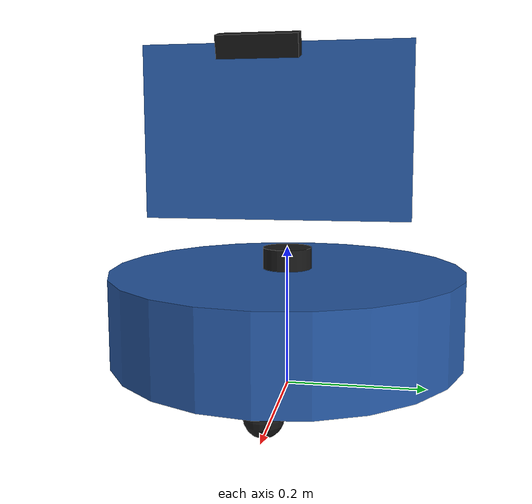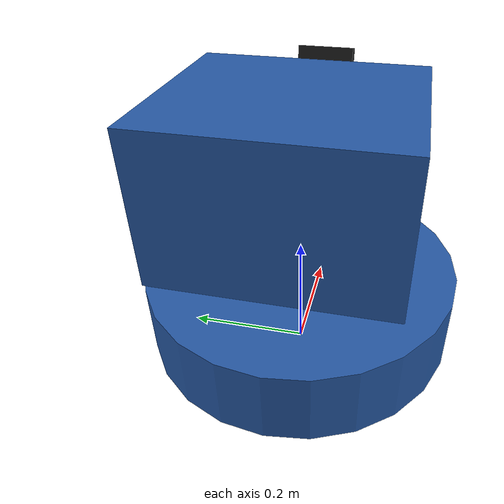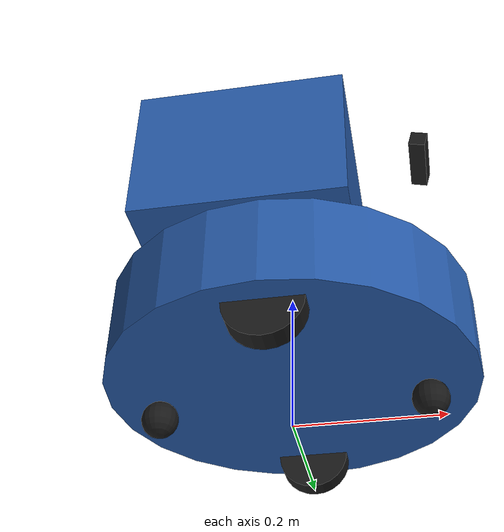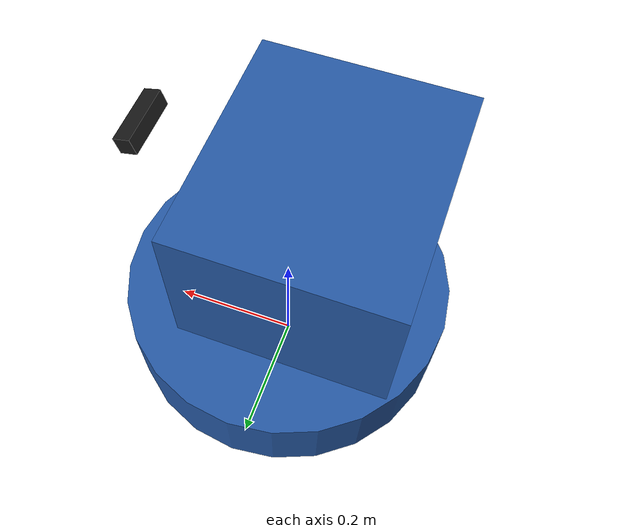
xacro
<?xml version="1.0"?>
<robot xmlns:xacro="http://www.ros.org/wiki/xacro" name="courier">

  <xacro:arg name="use_sim" default="true"/>
  <xacro:arg name="wheel_radius_error" default="0.01"/>
  <xacro:arg name="wheel_separation_error" default="-0.04"/>

  <xacro:property name="base_radius" value="0.25"/>
  <xacro:property name="base_height" value="0.12"/>
  <xacro:property name="base_z" value="0.05"/>
  <xacro:property name="wheel_radius" value="0.05"/>
  <xacro:property name="wheel_width" value="0.03"/>
  <xacro:property name="wheel_separation" value="0.40"/>
  <xacro:property name="lidar_z" value="0.18"/>
  <xacro:property name="camera_x" value="0.20"/>
  <xacro:property name="camera_z" value="0.45"/>
  <xacro:property name="camera_pitch" value="0.2618"/>

  <xacro:macro name="cylinder_inertia" params="m r h">
    <inertia ixx="${m*(3*r*r+h*h)/12}" ixy="0" ixz="0" iyy="${m*(3*r*r+h*h)/12}" iyz="0" izz="${m*r*r/2}"/>
  </xacro:macro>
  <xacro:macro name="box_inertia" params="m x y z">
    <inertia ixx="${m*(y*y+z*z)/12}" ixy="0" ixz="0" iyy="${m*(x*x+z*z)/12}" iyz="0" izz="${m*(x*x+y*y)/12}"/>
  </xacro:macro>

  <material name="body"><color rgba="0.15 0.35 0.65 1"/></material>
  <material name="dark"><color rgba="0.1 0.1 0.1 1"/></material>

  <link name="base_footprint"/>

  <link name="base_link">
    <visual>
      <origin xyz="0 0 ${base_height/2}"/>
      <geometry><cylinder radius="${base_radius}" length="${base_height}"/></geometry>
      <material name="body"/>
    </visual>
    <collision>
      <origin xyz="0 0 ${base_height/2}"/>
      <geometry><cylinder radius="${base_radius}" length="${base_height}"/></geometry>
    </collision>
    <inertial>
      <origin xyz="0 0 ${base_height/2}"/>
      <mass value="15.0"/>
      <xacro:cylinder_inertia m="15.0" r="${base_radius}" h="${base_height}"/>
    </inertial>
  </link>
  <joint name="base_joint" type="fixed">
    <parent link="base_footprint"/>
    <child link="base_link"/>
    <origin xyz="0 0 ${base_z}"/>
  </joint>

  <!-- Delivery bin + camera mast -->
  <link name="bin_link">
    <visual><geometry><box size="0.30 0.34 0.22"/></geometry><material name="body"/></visual>
    <collision><geometry><box size="0.30 0.34 0.22"/></geometry></collision>
    <inertial><mass value="2.0"/><xacro:box_inertia m="2.0" x="0.3" y="0.34" z="0.22"/></inertial>
  </link>
  <joint name="bin_joint" type="fixed">
    <parent link="base_link"/><child link="bin_link"/>
    <origin xyz="-0.05 0 ${base_height + 0.11 + 0.08}"/>
  </joint>

  <xacro:macro name="wheel" params="side y">
    <link name="${side}_wheel_link">
      <visual>
        <origin rpy="${pi/2} 0 0"/>
        <geometry><cylinder radius="${wheel_radius}" length="${wheel_width}"/></geometry>
        <material name="dark"/>
      </visual>
      <collision>
        <origin rpy="${pi/2} 0 0"/>
        <geometry><cylinder radius="${wheel_radius}" length="${wheel_width}"/></geometry>
      </collision>
      <inertial>
        <origin rpy="${pi/2} 0 0"/>
        <mass value="0.5"/>
        <xacro:cylinder_inertia m="0.5" r="${wheel_radius}" h="${wheel_width}"/>
      </inertial>
    </link>
    <joint name="${side}_wheel_joint" type="continuous">
      <parent link="base_link"/><child link="${side}_wheel_link"/>
      <origin xyz="0 ${y} ${wheel_radius - base_z}"/>
      <axis xyz="0 1 0"/>
    </joint>
    <gazebo reference="${side}_wheel_link">
      <!-- Polished floor: modest friction so hard turns and accelerations slip. -->
      <mu1>0.6</mu1><mu2>0.6</mu2>
    </gazebo>
  </xacro:macro>
  <xacro:wheel side="left" y="${wheel_separation/2}"/>
  <xacro:wheel side="right" y="${-wheel_separation/2}"/>

  <xacro:macro name="caster" params="name x">
    <link name="${name}_link">
      <visual><geometry><sphere radius="0.025"/></geometry><material name="dark"/></visual>
      <collision><geometry><sphere radius="0.025"/></geometry></collision>
      <inertial><mass value="0.1"/><inertia ixx="2.5e-5" ixy="0" ixz="0" iyy="2.5e-5" iyz="0" izz="2.5e-5"/></inertial>
    </link>
    <joint name="${name}_joint" type="fixed">
      <parent link="base_link"/><child link="${name}_link"/>
      <origin xyz="${x} 0 ${0.025 - base_z}"/>
    </joint>
    <gazebo reference="${name}_link"><mu1>0.0</mu1><mu2>0.0</mu2></gazebo>
  </xacro:macro>
  <xacro:caster name="front_caster" x="0.18"/>
  <xacro:caster name="rear_caster" x="-0.18"/>

  <!-- 2D LiDAR -->
  <link name="lidar_link">
    <visual><geometry><cylinder radius="0.035" length="0.04"/></geometry><material name="dark"/></visual>
    <inertial><mass value="0.2"/><xacro:cylinder_inertia m="0.2" r="0.035" h="0.04"/></inertial>
  </link>
  <joint name="lidar_joint" type="fixed">
    <parent link="base_footprint"/><child link="lidar_link"/>
    <origin xyz="0 0 ${lidar_z}"/>
  </joint>

  <!-- IMU at the rotation centre -->
  <link name="imu_link">
    <inertial><mass value="0.01"/><inertia ixx="1e-6" ixy="0" ixz="0" iyy="1e-6" iyz="0" izz="1e-6"/></inertial>
  </link>
  <joint name="imu_joint" type="fixed">
    <parent link="base_link"/><child link="imu_link"/>
    <origin xyz="0 0 0.02"/>
  </joint>

  <!-- RGB-D camera (D435-class): mast + optical frames -->
  <link name="camera_link">
    <visual><geometry><box size="0.025 0.09 0.025"/></geometry><material name="dark"/></visual>
    <inertial><mass value="0.07"/><xacro:box_inertia m="0.07" x="0.025" y="0.09" z="0.025"/></inertial>
  </link>
  <joint name="camera_joint" type="fixed">
    <parent link="base_footprint"/><child link="camera_link"/>
    <origin xyz="${camera_x} 0 ${camera_z}" rpy="0 ${camera_pitch} 0"/>
  </joint>
  <link name="camera_optical_frame"/>
  <joint name="camera_optical_joint" type="fixed">
    <parent link="camera_link"/><child link="camera_optical_frame"/>
    <origin rpy="${-pi/2} 0 ${-pi/2}"/>
  </joint>

  <xacro:if value="$(arg use_sim)">
    <xacro:include filename="$(find cc_description)/urdf/gazebo.xacro"/>
    <xacro:courier_gazebo wheel_separation="${wheel_separation * (1 + $(arg wheel_separation_error))}"
                          wheel_radius="${wheel_radius * (1 + $(arg wheel_radius_error))}"/>
  </xacro:if>
</robot>
